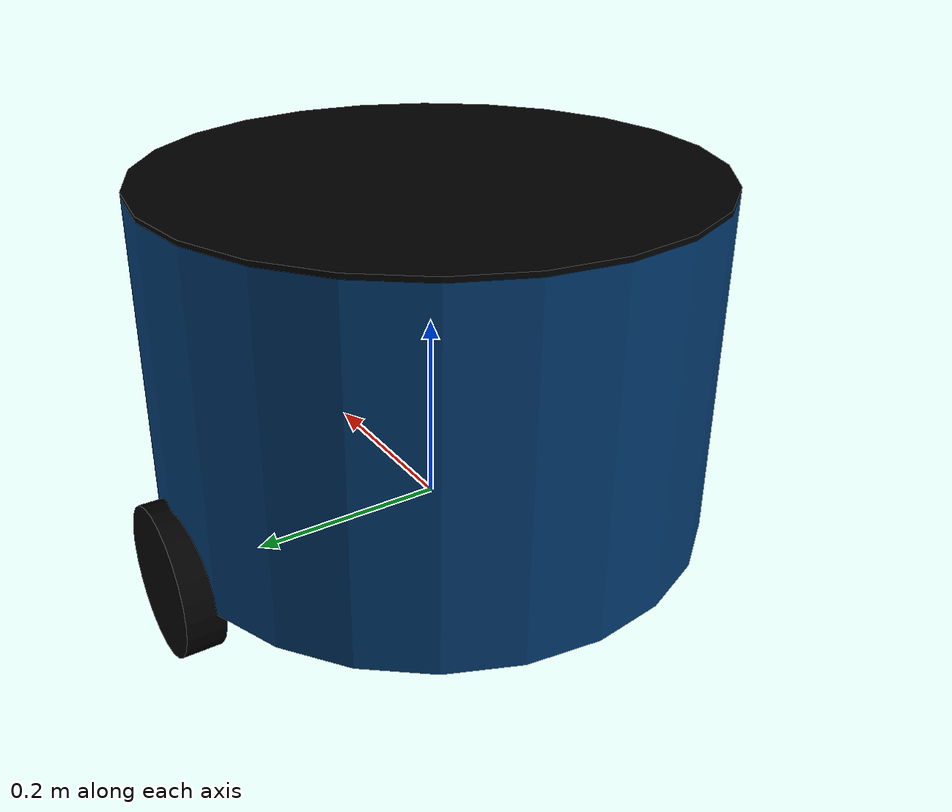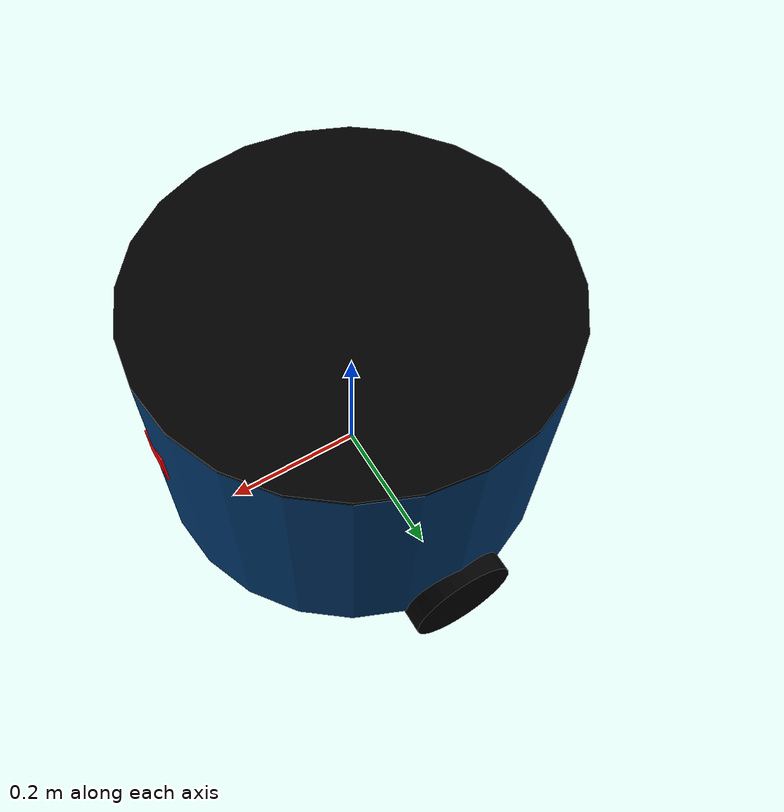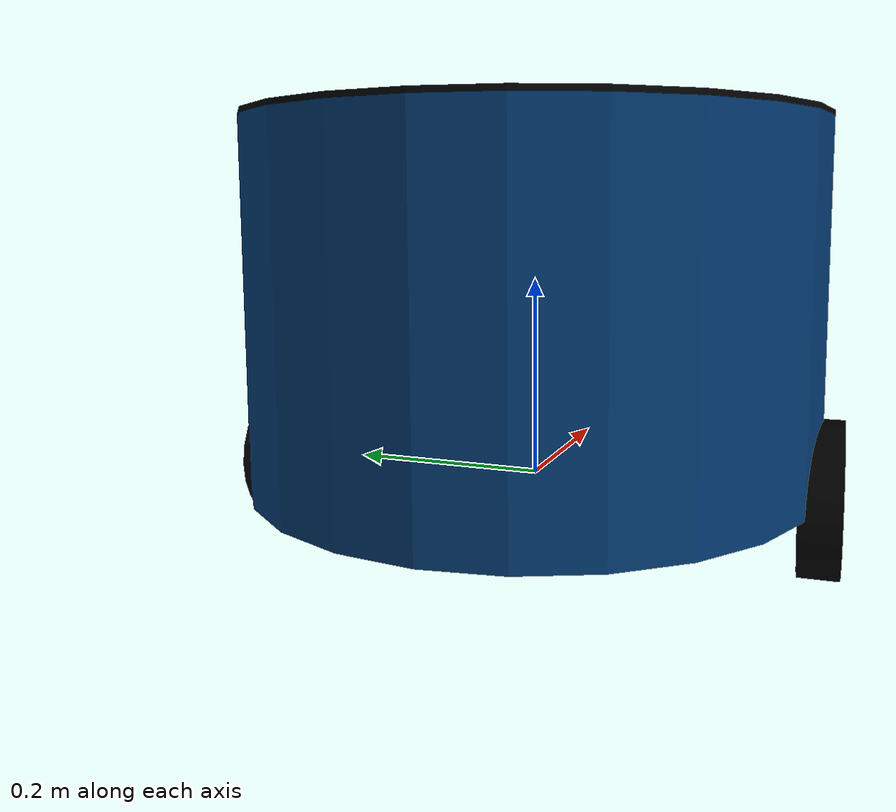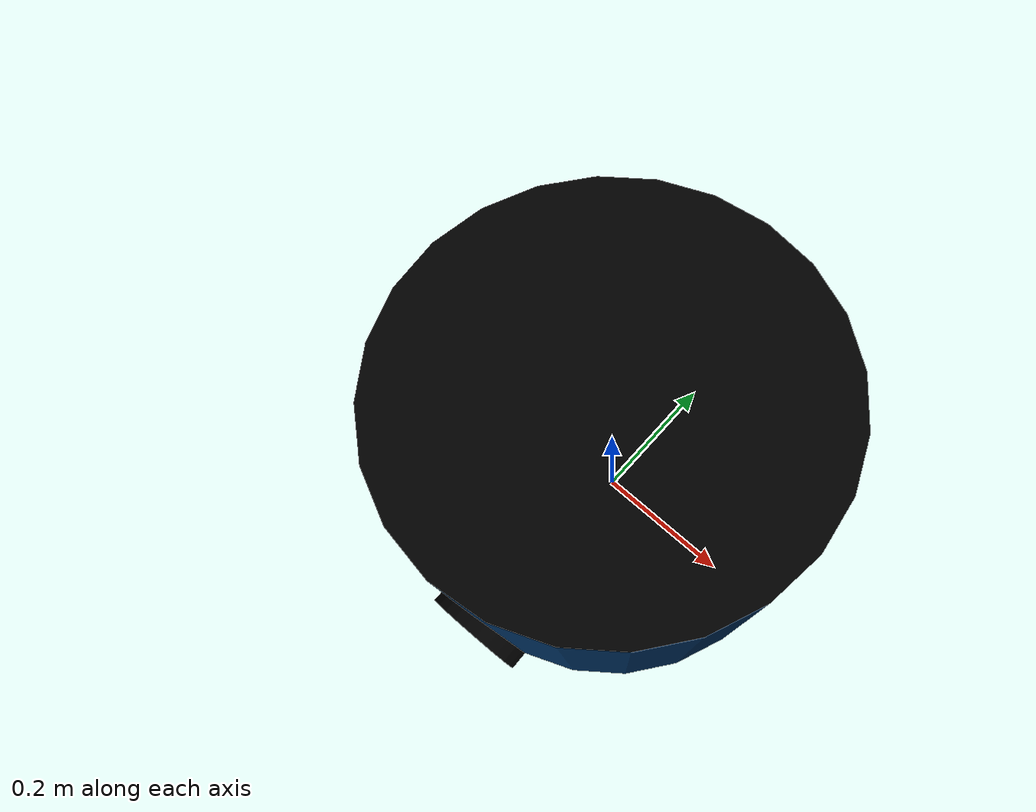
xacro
<?xml version="1.0"?>
<robot xmlns:xacro="http://www.ros.org/wiki/xacro" name="tobot">

  <!-- Constant for the xacro model -->

  <xacro:property name="GROUND_CLEARANCE" value="0.1775" />
  <xacro:property name="width" value="0.285" />
  <xacro:property name="bodylen" value="0.355" />
  <xacro:property name="wheel_w" value="0.039" />
  <xacro:property name="wheel_rad" value="0.075" />
  <xacro:property name="plat_rad" value="0.285" />
  <xacro:property name="plat_len" value="0.005" />
  <xacro:property name="HIGH_PLATFORM" value="0.15" />
  <xacro:property name="posz_laser" value="0.285" />

  <material name="black">
    <color rgba="0 0 0 1"/>
  </material>

  <material name="red">
    <color rgba="1 0 0 1"/>
  </material>

  <!-- Actual frame and materials -->

  <link name="base_link">
    <visual>
      <geometry>
         <cylinder length="${bodylen}" radius="${width}"/>
      </geometry>
      <origin rpy="0 0 0" xyz="0 0 ${GROUND_CLEARANCE}"/>
      <material name="blue">
        <color rgba="0 0.2 0.4 1"/>
      </material>
    </visual>
    <collision>
      <geometry>
         <cylinder length="${bodylen}" radius="${width}"/>
      </geometry>
      <origin rpy="0 0 0" xyz="0 0 ${bodylen/2}"/>
    </collision>
  </link>

  <link name="lwheel">
    <visual>
      <geometry>
        <cylinder length="${wheel_w}" radius="${wheel_rad}"/>
      </geometry>
      <origin rpy="-1.57075 0 0" xyz="0 0 0"/>
      <material name="black"/>
    </visual>
    <collsion>
      <geometry>
        <cylinder length="${wheel_w}" radius="${wheel_rad}"/>
      </geometry>
      <origin rpy="-1.57075 0 0" xyz="0 0 ${GROUND_CLEARANCE-(width/2)}"/>
    </collsion>
  </link>

  <joint name="base_to_lwheel" type="continuous">
    <parent link="base_link"/>
    <child link="lwheel"/>
    <axis xyz="0 1 0"/>
    <origin xyz="0 ${width} 0" rpy="0 0 0"/>
  </joint>

  <link name="rwheel">
    <visual>
      <geometry>
        <cylinder length="${wheel_w}" radius="${wheel_rad}"/>
      </geometry>
      <origin rpy="-1.57075 0 0" xyz="0 0 0"/>
      <material name="black"/>
    </visual>
    <collsion>
      <geometry>
        <cylinder length="${wheel_w}" radius="${wheel_rad}"/>
      </geometry>
      <origin rpy="-1.57075 0 0" xyz="0 0 0"/>
    </collsion>
  </link>

  <joint name="base_to_rwheel" type="continuous">
    <parent link="base_link"/>
    <child link="rwheel"/>
    <axis xyz="0 1 0"/>
    <origin xyz="0 ${-width} 0" rpy="0 0 ${GROUND_CLEARANCE-(width/2)}"/>
  </joint>

  <link name="laser">
    <visual>
      <geometry>
        <box size="0.05 .05 .05"/>
      </geometry>
      <origin rpy="0 0 0" xyz="-0.025 0 0.025"/>
      <material name="red"/>
    </visual>
  </link>

  <joint name="base_laser" type="fixed">
    <parent link="base_link"/>
    <child link="laser"/>
    <origin xyz="${width} 0 ${GROUND_CLEARANCE-width+posz_laser} " rpy="0 0 0"/>
  </joint>

  <!-- PLatform qui se leve-->
  <link name="platform">
    <visual>
      <geometry>
         <cylinder length="${plat_len}" radius="${plat_rad}"/>
      </geometry>
      <origin rpy="0 0 0" xyz="0 0 ${plat_len/2}"/>
      <material name="black"/>
    </visual>
  </link>

  <joint name="base_platform" type="prismatic">
    <parent link="base_link"/>
    <child link="platform"/>
    <axis xyz="0 0 1"/>
    <limit effort="1000.0" lower="0" upper="${HIGH_PLATFORM}" velocity="0.5"/>
    <origin rpy="0 0 0" xyz="0 0 ${(bodylen/2)+GROUND_CLEARANCE}"/>
  </joint>

</robot>
